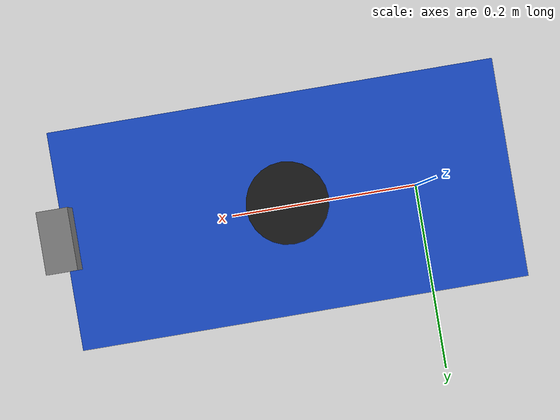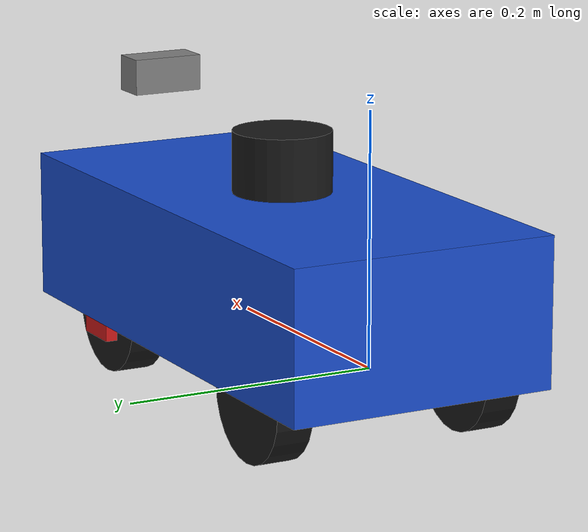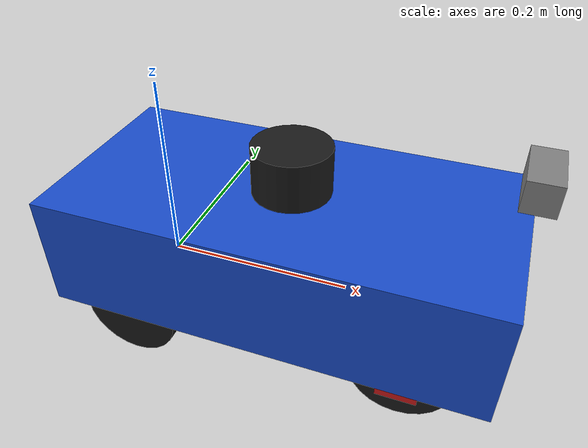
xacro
<?xml version="1.0"?>
<robot name="smart_car" xmlns:xacro="http://www.ros.org/wiki/xacro">

  <!-- ==================== 常量定义 ==================== -->
  <xacro:property name="PI" value="3.1415926"/>

  <!-- 底盘参数 -->
  <xacro:property name="base_length" value="0.45"/>
  <xacro:property name="base_width" value="0.22"/>
  <xacro:property name="base_height" value="0.12"/>
  <xacro:property name="base_mass" value="4.0"/>

  <!-- 车轮参数 -->
  <xacro:property name="wheel_radius" value="0.05"/>
  <xacro:property name="wheel_width" value="0.03"/>
  <xacro:property name="wheel_mass" value="0.3"/>

  <!-- 阿克曼几何参数 -->
  <xacro:property name="wheelbase" value="0.28"/>
  <xacro:property name="traction_track_width" value="0.18"/>  <!-- 后轮轮距 -->
  <xacro:property name="steering_track_width" value="0.18"/>   <!-- 前轮转向枢轴间距 -->
  <xacro:property name="wheel_offset_x" value="${wheelbase/2}"/>
  <xacro:property name="wheel_offset_y" value="${traction_track_width/2}"/>

  <!-- 传感器安装位置 -->
  <xacro:property name="camera_x_offset" value="0.22"/>
  <xacro:property name="camera_height" value="0.12"/>

  <!-- ==================== 材质定义 ==================== -->
  <material name="blue"><color rgba="0.1 0.3 0.8 1.0"/></material>
  <material name="black"><color rgba="0.1 0.1 0.1 1.0"/></material>
  <material name="grey"><color rgba="0.5 0.5 0.5 1.0"/></material>
  <material name="red"><color rgba="0.8 0.1 0.1 1.0"/></material>

  <!-- ==================== 惯性矩阵宏 ==================== -->
  <xacro:macro name="box_inertia" params="m a b c">
    <inertial>
      <mass value="${m}"/>
      <inertia ixx="${m*(b*b+c*c)/12}" ixy="0" ixz="0"
               iyy="${m*(a*a+c*c)/12}" iyz="0"
               izz="${m*(a*a+b*b)/12}"/>
    </inertial>
  </xacro:macro>

  <xacro:macro name="cylinder_inertia" params="m r h">
    <inertial>
      <mass value="${m}"/>
      <inertia ixx="${m*(3*r*r+h*h)/12}" ixy="0" ixz="0"
               iyy="${m*(3*r*r+h*h)/12}" iyz="0"
               izz="${m*r*r/2}"/>
    </inertial>
  </xacro:macro>

  <!-- ==================== 底盘基座 ==================== -->
  <link name="base_footprint"/>
  <joint name="base_footprint_joint" type="fixed">
    <parent link="base_footprint"/>
    <child link="base_link"/>
    <!-- The controller integrates the rear axle midpoint. Put the body centre
         half a wheelbase ahead of that ground-level reference point. -->
    <origin xyz="${wheel_offset_x} 0 ${wheel_radius}" rpy="0 0 0"/>
  </joint>

  <!-- ==================== 车体底盘 ==================== -->
  <link name="base_link">
    <visual>
      <origin xyz="0 0 0" rpy="0 0 0"/>
      <geometry><box size="${base_length} ${base_width} ${base_height}"/></geometry>
      <material name="blue"/>
    </visual>
    <collision>
      <origin xyz="0 0 0" rpy="0 0 0"/>
      <geometry><box size="${base_length} ${base_width} ${base_height}"/></geometry>
    </collision>
    <xacro:box_inertia m="${base_mass}" a="${base_length}" b="${base_width}" c="${base_height}"/>
  </link>

  <!-- ==================== 左前轮（转向+驱动） ==================== -->
  <!-- 转向连杆 -->
  <link name="front_left_steering_link">
    <visual>
      <origin xyz="0 0 0" rpy="0 0 0"/>
      <geometry><box size="0.04 0.02 0.04"/></geometry>
      <material name="red"/>
    </visual>
    <collision>
      <origin xyz="0 0 0" rpy="0 0 0"/>
      <geometry><box size="0.04 0.02 0.04"/></geometry>
    </collision>
    <xacro:box_inertia m="0.1" a="0.04" b="0.02" c="0.04"/>
  </link>

  <joint name="front_left_steering_joint" type="revolute">
    <parent link="base_link"/>
    <child link="front_left_steering_link"/>
    <origin xyz="${wheel_offset_x} ${steering_track_width/2} ${-base_height/2}" rpy="0 0 0"/>
    <axis xyz="0 0 1"/>
    <limit lower="-0.5236" upper="0.5236" effort="50" velocity="5.0"/>
  </joint>

  <!-- 左前轮 -->
  <link name="front_left_wheel">
    <visual>
      <origin xyz="0 0 0" rpy="${PI/2} 0 0"/>
      <geometry><cylinder radius="${wheel_radius}" length="${wheel_width}"/></geometry>
      <material name="black"/>
    </visual>
    <collision>
      <origin xyz="0 0 0" rpy="${PI/2} 0 0"/>
      <geometry><cylinder radius="${wheel_radius}" length="${wheel_width}"/></geometry>
    </collision>
    <xacro:cylinder_inertia m="${wheel_mass}" r="${wheel_radius}" h="${wheel_width}"/>
  </link>

  <joint name="front_left_wheel_joint" type="continuous">
    <parent link="front_left_steering_link"/>
    <child link="front_left_wheel"/>
    <origin xyz="0 ${-wheel_width/2} 0" rpy="0 0 0"/>
    <axis xyz="0 1 0"/>
  </joint>

  <!-- ==================== 右前轮（转向+驱动） ==================== -->
  <link name="front_right_steering_link">
    <visual>
      <origin xyz="0 0 0" rpy="0 0 0"/>
      <geometry><box size="0.04 0.02 0.04"/></geometry>
      <material name="red"/>
    </visual>
    <collision>
      <origin xyz="0 0 0" rpy="0 0 0"/>
      <geometry><box size="0.04 0.02 0.04"/></geometry>
    </collision>
    <xacro:box_inertia m="0.1" a="0.04" b="0.02" c="0.04"/>
  </link>

  <joint name="front_right_steering_joint" type="revolute">
    <parent link="base_link"/>
    <child link="front_right_steering_link"/>
    <origin xyz="${wheel_offset_x} ${-steering_track_width/2} ${-base_height/2}" rpy="0 0 0"/>
    <axis xyz="0 0 1"/>
    <limit lower="-0.5236" upper="0.5236" effort="50" velocity="5.0"/>
  </joint>

  <link name="front_right_wheel">
    <visual>
      <origin xyz="0 0 0" rpy="${PI/2} 0 0"/>
      <geometry><cylinder radius="${wheel_radius}" length="${wheel_width}"/></geometry>
      <material name="black"/>
    </visual>
    <collision>
      <origin xyz="0 0 0" rpy="${PI/2} 0 0"/>
      <geometry><cylinder radius="${wheel_radius}" length="${wheel_width}"/></geometry>
    </collision>
    <xacro:cylinder_inertia m="${wheel_mass}" r="${wheel_radius}" h="${wheel_width}"/>
  </link>

  <joint name="front_right_wheel_joint" type="continuous">
    <parent link="front_right_steering_link"/>
    <child link="front_right_wheel"/>
    <origin xyz="0 ${wheel_width/2} 0" rpy="0 0 0"/>
    <axis xyz="0 1 0"/>
  </joint>

  <!-- ==================== 后轮（仅驱动） ==================== -->
  <link name="rear_left_wheel">
    <visual>
      <origin xyz="0 0 0" rpy="${PI/2} 0 0"/>
      <geometry><cylinder radius="${wheel_radius}" length="${wheel_width}"/></geometry>
      <material name="black"/>
    </visual>
    <collision>
      <origin xyz="0 0 0" rpy="${PI/2} 0 0"/>
      <geometry><cylinder radius="${wheel_radius}" length="${wheel_width}"/></geometry>
    </collision>
    <xacro:cylinder_inertia m="${wheel_mass}" r="${wheel_radius}" h="${wheel_width}"/>
  </link>

  <joint name="rear_left_wheel_joint" type="continuous">
    <parent link="base_link"/>
    <child link="rear_left_wheel"/>
    <origin xyz="${-wheel_offset_x} ${traction_track_width/2} ${-base_height/2}" rpy="0 0 0"/>
    <axis xyz="0 1 0"/>
  </joint>

  <link name="rear_right_wheel">
    <visual>
      <origin xyz="0 0 0" rpy="${PI/2} 0 0"/>
      <geometry><cylinder radius="${wheel_radius}" length="${wheel_width}"/></geometry>
      <material name="black"/>
    </visual>
    <collision>
      <origin xyz="0 0 0" rpy="${PI/2} 0 0"/>
      <geometry><cylinder radius="${wheel_radius}" length="${wheel_width}"/></geometry>
    </collision>
    <xacro:cylinder_inertia m="${wheel_mass}" r="${wheel_radius}" h="${wheel_width}"/>
  </link>

  <joint name="rear_right_wheel_joint" type="continuous">
    <parent link="base_link"/>
    <child link="rear_right_wheel"/>
    <origin xyz="${-wheel_offset_x} ${-traction_track_width/2} ${-base_height/2}" rpy="0 0 0"/>
    <axis xyz="0 1 0"/>
  </joint>

  <!-- ==================== 激光雷达 ==================== -->
  <link name="lidar_link">
    <visual>
      <origin xyz="0 0 0" rpy="0 0 0"/>
      <geometry><cylinder radius="0.04" length="0.05"/></geometry>
      <material name="black"/>
    </visual>
    <collision>
      <origin xyz="0 0 0" rpy="0 0 0"/>
      <geometry><cylinder radius="0.04" length="0.05"/></geometry>
    </collision>
    <xacro:cylinder_inertia m="0.1" r="0.04" h="0.05"/>
  </link>

  <joint name="lidar_joint" type="fixed">
    <parent link="base_link"/>
    <child link="lidar_link"/>
    <origin xyz="0 0 ${base_height/2 + 0.025}" rpy="0 0 0"/>
  </joint>

  <!-- ==================== RGB 相机 ==================== -->
  <link name="camera_link">
    <visual>
      <origin xyz="0 0 0" rpy="0 0 0"/>
      <geometry><box size="0.03 0.06 0.03"/></geometry>
      <material name="grey"/>
    </visual>
    <collision>
      <origin xyz="0 0 0" rpy="0 0 0"/>
      <geometry><box size="0.03 0.06 0.03"/></geometry>
    </collision>
    <xacro:box_inertia m="0.05" a="0.03" b="0.06" c="0.03"/>
  </link>

  <joint name="camera_joint" type="fixed">
    <parent link="base_link"/>
    <child link="camera_link"/>
    <origin xyz="${camera_x_offset} 0 ${camera_height}" rpy="0 0 0"/>
  </joint>

  <link name="camera_optical_link"/>
  <joint name="camera_optical_joint" type="fixed">
    <parent link="camera_link"/>
    <child link="camera_optical_link"/>
    <origin xyz="0 0 0" rpy="-${PI/2} 0 -${PI/2}"/>
  </joint>

  <!-- ==================== ros2_control 硬件接口 ==================== -->
  <ros2_control name="SmartCarSystem" type="system">
    <hardware>
      <plugin>gazebo_ros2_control/GazeboSystem</plugin>
    </hardware>

    <!-- 左前转向关节 -->
    <joint name="front_left_steering_joint">
      <command_interface name="position">
        <param name="min">-0.5236</param>
        <param name="max">0.5236</param>
      </command_interface>
      <state_interface name="position"/>
      <state_interface name="velocity"/>
    </joint>

    <!-- 右前转向关节 -->
    <joint name="front_right_steering_joint">
      <command_interface name="position">
        <param name="min">-0.5236</param>
        <param name="max">0.5236</param>
      </command_interface>
      <state_interface name="position"/>
      <state_interface name="velocity"/>
    </joint>

    <!-- 左前驱动轮 -->
    <joint name="front_left_wheel_joint">
      <state_interface name="position"/>
      <state_interface name="velocity"/>
    </joint>

    <!-- 右前驱动轮 -->
    <joint name="front_right_wheel_joint">
      <state_interface name="position"/>
      <state_interface name="velocity"/>
    </joint>

    <!-- 左后驱动轮 -->
    <joint name="rear_left_wheel_joint">
      <command_interface name="velocity">
        <param name="min">-20.0</param>
        <param name="max">20.0</param>
      </command_interface>
      <state_interface name="position"/>
      <state_interface name="velocity"/>
    </joint>

    <!-- 右后驱动轮 -->
    <joint name="rear_right_wheel_joint">
      <command_interface name="velocity">
        <param name="min">-20.0</param>
        <param name="max">20.0</param>
      </command_interface>
      <state_interface name="position"/>
      <state_interface name="velocity"/>
    </joint>
  </ros2_control>

  <!-- ==================== Gazebo 插件配置 ==================== -->
  <gazebo>
    <plugin filename="libgazebo_ros2_control.so" name="gazebo_ros2_control">
      <ros>
              <!-- 把控制器的 TF 输出接到全局 /tf -->
      <remapping>ackermann_steering_controller/tf_odometry:=/tf</remapping>
        <remapping>ackermann_steering_controller/reference_unstamped:=cmd_vel</remapping>
        <!-- 可选：同时重映射里程计话题，方便 RViz 显示 -->
        <remapping>ackermann_steering_controller/odometry:=odom</remapping>
      </ros>
      <parameters>$(find smart_car_description)/config/ackermann_controllers.yaml</parameters>
    </plugin>
  </gazebo>

  <!-- ==================== Gazebo 传感器插件 ==================== -->
  <gazebo reference="lidar_link">
    <sensor name="laserscan" type="ray">
      <always_on>true</always_on>
      <visualize>true</visualize>
      <update_rate>10</update_rate>
      <ray>
        <scan>
          <horizontal>
            <samples>360</samples>
            <resolution>1.000000</resolution>
            <min_angle>0.000000</min_angle>
            <max_angle>6.280000</max_angle>
          </horizontal>
        </scan>
        <range>
          <min>0.12</min>
          <max>8.0</max>
          <resolution>0.015</resolution>
        </range>
        <noise>
          <type>gaussian</type>
          <mean>0.0</mean>
          <stddev>0.01</stddev>
        </noise>
      </ray>
      <plugin name="laserscan" filename="libgazebo_ros_ray_sensor.so">
        <ros>
          <namespace>/</namespace>
          <remapping>~/out:=/scan</remapping>
        </ros>
        <output_type>sensor_msgs/LaserScan</output_type>
        <frame_name>lidar_link</frame_name>
      </plugin>
    </sensor>
  </gazebo>

  <gazebo reference="camera_link">
    <sensor name="camera" type="camera">
      <always_on>true</always_on>
      <visualize>true</visualize>
      <update_rate>30</update_rate>
      <camera>
        <horizontal_fov>1.047</horizontal_fov>
        <image>
          <width>640</width>
          <height>480</height>
          <format>R8G8B8</format>
        </image>
        <clip>
          <near>0.05</near>
          <far>10.0</far>
        </clip>
      </camera>
      <plugin name="camera_controller" filename="libgazebo_ros_camera.so">
        <ros>
          <namespace>/</namespace>
          <remapping>~/image_raw:=/camera/image_raw</remapping>
          <remapping>~/camera_info:=/camera/camera_info</remapping>
        </ros>
        <frame_name>camera_optical_link</frame_name>
      </plugin>
    </sensor>
  </gazebo>

</robot>
